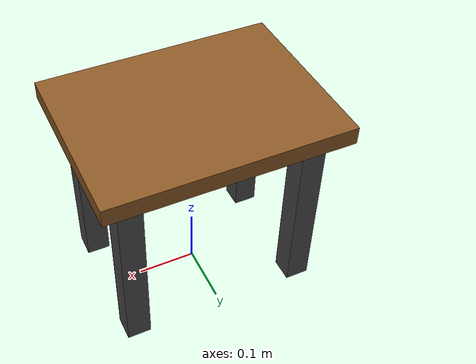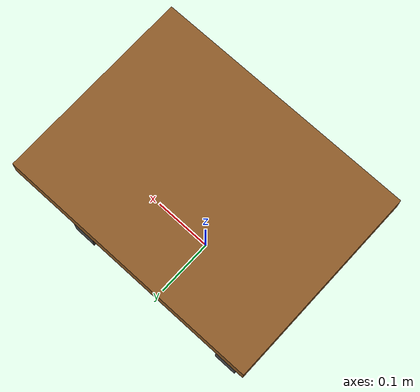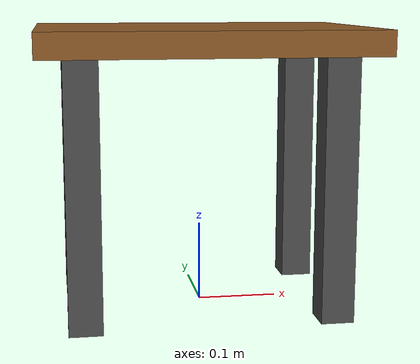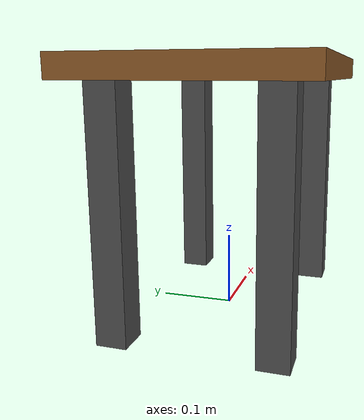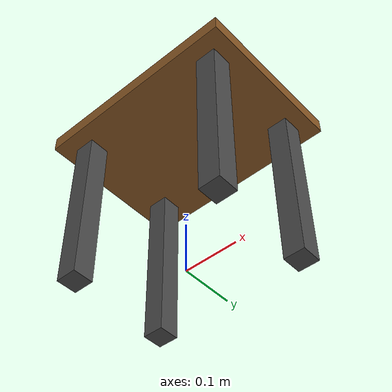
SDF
<?xml version="1.0" ?>
<sdf version="1.9">
  <model name="pickup_table">
    <static>true</static>
    <pose>0 0 0 0 0 0</pose>

    <!-- Tabletop: top surface at 0.35 m, board thickness 0.03 m -->
    <link name="tabletop">
      <pose>0 0 0.335 0 0 0</pose>
      <collision name="tabletop_collision">
        <geometry>
          <box>
            <size>0.40 0.30 0.03</size>
          </box>
        </geometry>
      </collision>
      <visual name="tabletop_visual">
        <geometry>
          <box>
            <size>0.40 0.30 0.03</size>
          </box>
        </geometry>
        <material>
          <ambient>0.55 0.35 0.15 1</ambient>
          <diffuse>0.55 0.35 0.15 1</diffuse>
        </material>
      </visual>
    </link>

    <!-- Four legs: 0.32 m tall, top meeting underside of tabletop -->
    <link name="leg_fl">
      <pose>0.15 0.10 0.16 0 0 0</pose>
      <collision name="leg_fl_collision">
        <geometry><box><size>0.04 0.04 0.32</size></box></geometry>
      </collision>
      <visual name="leg_fl_visual">
        <geometry><box><size>0.04 0.04 0.32</size></box></geometry>
        <material>
          <ambient>0.3 0.3 0.3 1</ambient>
          <diffuse>0.3 0.3 0.3 1</diffuse>
        </material>
      </visual>
    </link>
    <link name="leg_fr">
      <pose>0.15 -0.10 0.16 0 0 0</pose>
      <collision name="leg_fr_collision">
        <geometry><box><size>0.04 0.04 0.32</size></box></geometry>
      </collision>
      <visual name="leg_fr_visual">
        <geometry><box><size>0.04 0.04 0.32</size></box></geometry>
        <material>
          <ambient>0.3 0.3 0.3 1</ambient>
          <diffuse>0.3 0.3 0.3 1</diffuse>
        </material>
      </visual>
    </link>
    <link name="leg_rl">
      <pose>-0.15 0.10 0.16 0 0 0</pose>
      <collision name="leg_rl_collision">
        <geometry><box><size>0.04 0.04 0.32</size></box></geometry>
      </collision>
      <visual name="leg_rl_visual">
        <geometry><box><size>0.04 0.04 0.32</size></box></geometry>
        <material>
          <ambient>0.3 0.3 0.3 1</ambient>
          <diffuse>0.3 0.3 0.3 1</diffuse>
        </material>
      </visual>
    </link>
    <link name="leg_rr">
      <pose>-0.15 -0.10 0.16 0 0 0</pose>
      <collision name="leg_rr_collision">
        <geometry><box><size>0.04 0.04 0.32</size></box></geometry>
      </collision>
      <visual name="leg_rr_visual">
        <geometry><box><size>0.04 0.04 0.32</size></box></geometry>
        <material>
          <ambient>0.3 0.3 0.3 1</ambient>
          <diffuse>0.3 0.3 0.3 1</diffuse>
        </material>
      </visual>
    </link>

  </model>
</sdf>
